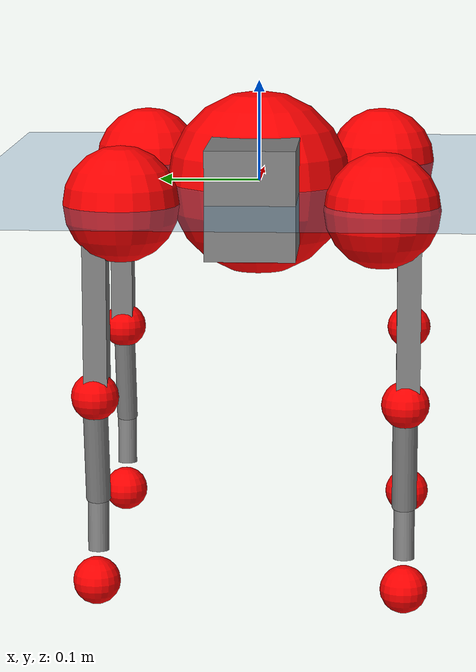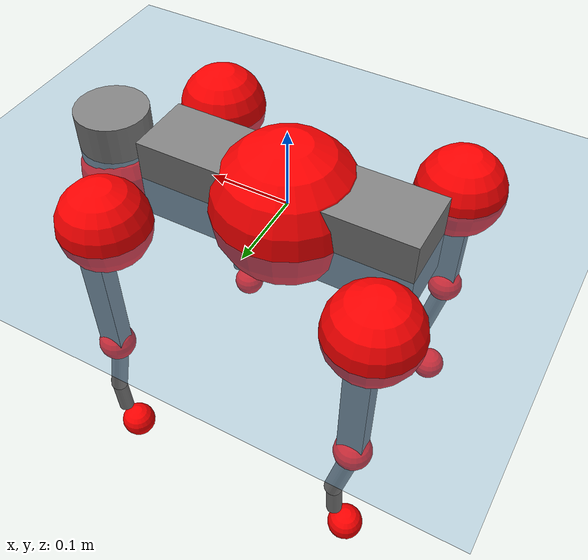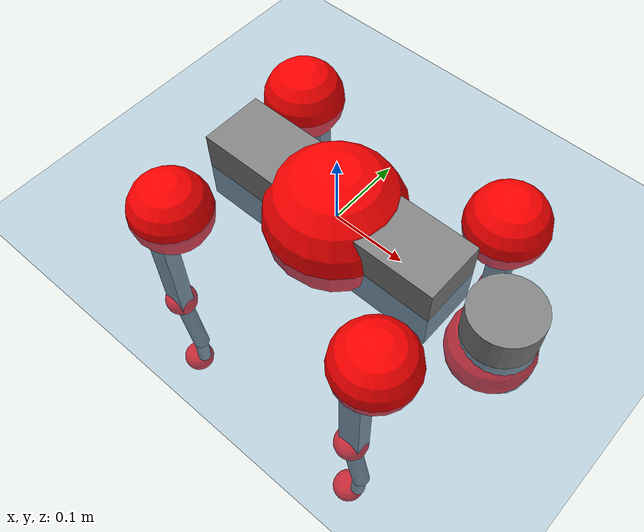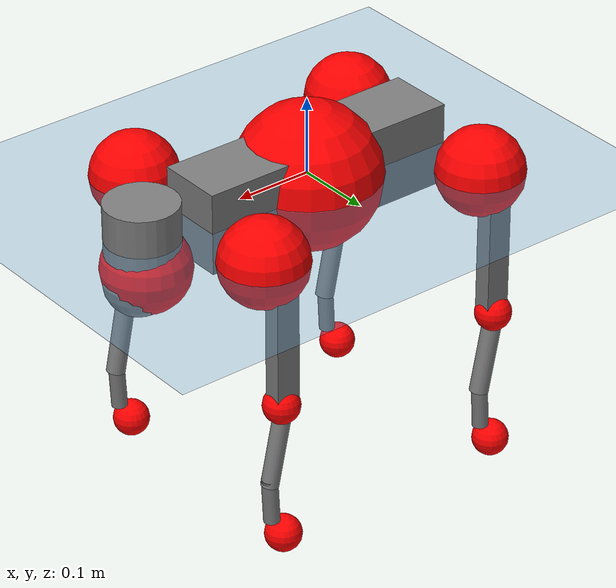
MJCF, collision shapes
<mujoco model="go2">
  <compiler angle="radian" assetdir="assets" balanceinertia="true" inertiafromgeom="false"/>

  <option timestep="0.005" density="1.2" viscosity="2e-05"/>

  <size nkey="1"/>

  <visual>
    <quality shadowsize="8192"/>
    <map shadowclip="0.5"/>
  </visual>

  <default>
    <default class="/">
      <geom contype="0" conaffinity="0" group="1" solref="-1000 -80"/>
      <site size="0.01 0.005 0.005" group="5"/>
      <general forcelimited="true" biastype="affine" gainprm="20" biasprm="0 -20 -0.5"/>
      <default class="go2">
        <joint armature="0.01" damping="0.01" frictionloss="0.2"/>
        <geom condim="1" margin="0.001"/>
        <default class="visual">
          <geom type="mesh" group="2"/>
        </default>
        <default class="collision">
          <geom group="3"/>
          <default class="foot">
            <geom size="0.022 0 0" condim="6" priority="1" friction="0.8 0.02 0.01" solimp="0.015 1 0.022"/>
          </default>
        </default>
        <default class="reward_collision_sphere">
          <geom group="5" rgba="1 0 0 1"/>
        </default>
      </default>
    </default>
  </default>

  <asset>
    <texture type="skybox" colorspace="auto" name="//unnamed_texture_0" builtin="gradient" rgb1="0.95 0.95 0.95" rgb2="0.95 0.95 0.95" width="100" height="600"/>
    <texture type="2d" colorspace="auto" name="texplane" builtin="checker" rgb1="0.345 0.575 0.748" rgb2="0.345 0.575 0.748" markrgb="1 1 1" width="512" height="512"/>
    <material name="MatPlane" class="/" texture="texplane" texuniform="true" texrepeat="2 2" specular="0.9"/>
    <material name="metal" class="/" rgba="0.9 0.95 0.95 1"/>
    <material name="black" class="/" rgba="0 0 0 1"/>
    <material name="white" class="/"/>
    <material name="gray" class="/" rgba="0.671705 0.692426 0.77427 1"/>
    <mesh name="base_0" class="/" file="base_0.obj"/>
    <mesh name="base_1" class="/" file="base_1.obj"/>
    <mesh name="base_2" class="/" file="base_2.obj"/>
    <mesh name="base_3" class="/" file="base_3.obj"/>
    <mesh name="base_4" class="/" file="base_4.obj"/>
    <mesh name="hip_0" class="/" file="hip_0.obj"/>
    <mesh name="hip_1" class="/" file="hip_1.obj"/>
    <mesh name="thigh_0" class="/" file="thigh_0.obj"/>
    <mesh name="thigh_1" class="/" file="thigh_1.obj"/>
    <mesh name="thigh_mirror_0" class="/" file="thigh_mirror_0.obj"/>
    <mesh name="thigh_mirror_1" class="/" file="thigh_mirror_1.obj"/>
    <mesh name="calf_0" class="/" file="calf_0.obj"/>
    <mesh name="calf_1" class="/" file="calf_1.obj"/>
    <mesh name="calf_mirror_0" class="/" file="calf_mirror_0.obj"/>
    <mesh name="calf_mirror_1" class="/" file="calf_mirror_1.obj"/>
    <mesh name="foot" class="/" file="foot.obj"/>
  </asset>

  <worldbody>
    <geom name="floor" class="/" size="100 100 0.125" type="plane" group="0" material="MatPlane"/>
    <light name="toplight_shadow" class="/" pos="0 0 5" dir="0.0990148 0.0990148 -0.990148" type="directional" ambient="0.04 0.04 0.04" diffuse="0.55 0.55 0.55" specular="0.12 0.12 0.12"/>
    <light name="toplight_fill" class="/" pos="0 0 5" dir="0.0990148 0.0990148 -0.990148" type="directional" castshadow="false" ambient="0.04 0.04 0.04" diffuse="0.3 0.3 0.3" specular="0.08 0.08 0.08"/>
    <body name="trunk" childclass="go2" pos="-0.00106972 0.00034157 -0.00213053" quat="0.999999 0.000230034 0.0012097 -3.98238e-05">
      <inertial pos="0.0163252 0.00261464 -0.00480188" quat="0.000456117 0.704867 -0.00570848 0.709316" mass="5.3932" diaginertia="0.0489786 0.140122 0.0114821"/>
      <joint name="//unnamed_joint_0" type="free" armature="0" damping="0" frictionloss="0"/>
      <geom name="//unnamed_geom_1" class="visual" material="black" mesh="base_0"/>
      <geom name="//unnamed_geom_2" class="visual" material="black" mesh="base_1"/>
      <geom name="//unnamed_geom_3" class="visual" material="black" mesh="base_2"/>
      <geom name="//unnamed_geom_4" class="visual" material="white" mesh="base_3"/>
      <geom name="//unnamed_geom_5" class="visual" material="gray" mesh="base_4"/>
      <geom name="trunk_1" class="collision" size="0.173816 0.0432 0.0526716" type="box"/>
      <geom name="trunk_2" class="collision" size="0.0462032 0.0415829" pos="0.241984 0 0.00856027" type="cylinder"/>
      <geom name="trunk_3" class="collision" size="0.043431" pos="0.248777 0 -0.0513616"/>
      <geom name="//unnamed_geom_9" class="reward_collision_sphere" size="0.0924064"/>
      <geom name="//unnamed_geom_10" class="reward_collision_sphere" size="0.0554438" pos="0.237739 0 -0.0385212"/>
      <site name="imu" pos="-0.0257301 0.0118986 0.0221316" size="0.00924064"/>
      <camera name="track" pos="0 -2.13419 0" quat="0.707107 0.707107 0 0" mode="trackcom"/>
      <camera name="ego_camera" pos="0.264909 0 0.0385212" quat="-0.5 -0.5 0.5 0.5"/>
      <body name="FL_hip" pos="0.164097 0.052254 0.00145288" quat="1 -0.000292942 -8.12397e-05 7.9743e-05">
        <inertial pos="-0.00718796 0.00260246 -0.00165309" quat="0.497772 0.493023 0.502248 0.506851" mass="0.520581" diaginertia="0.000392023 0.000799535 0.000214115"/>
        <joint name="FL_hip_joint" pos="0 0 0" axis="0.999987 -0.00301599 0.00417949" range="-1.05251 1.09265" armature="0.00918512" damping="0" frictionloss="0.204416"/>
        <geom name="//unnamed_geom_11" class="visual" material="metal" mesh="hip_0"/>
        <geom name="//unnamed_geom_12" class="visual" material="gray" mesh="hip_1"/>
        <geom name="//unnamed_geom_13" class="collision" size="0.0425069 0.0184813" pos="0 0.0853677 0" quat="0.707107 0.707107 0 0" type="cylinder"/>
        <geom name="//unnamed_geom_14" class="reward_collision_sphere" size="0.0554438" pos="0 0.0746968 0"/>
        <body name="FL_thigh" pos="-0.00353198 0.103625 0.00158643" quat="1 -0.000148678 -0.000274029 0.000180704">
          <inertial pos="-0.00194757 -0.023511 -0.0277263" quat="0.830208 0.082965 -0.0196378 0.550895" mass="0.873197" diaginertia="0.00251458 0.00781972 0.000376548"/>
          <joint name="FL_thigh_joint" pos="0 0 0" axis="0.0015247 0.999991 0.00391261" stiffness="0.0083047" range="-1.61263 3.48493" armature="0.00809059" damping="0.0190527" frictionloss="0.184232"/>
          <geom name="//unnamed_geom_15" class="visual" material="metal" mesh="thigh_0"/>
          <geom name="//unnamed_geom_16" class="visual" material="gray" mesh="thigh_1"/>
          <geom name="//unnamed_geom_17" class="collision" size="0.0984128 0.0113198 0.0157091" pos="0 0 -0.0911668" quat="0.707107 0 0.707107 0" type="box"/>
          <body name="FL_calf" pos="0.000952006 -0.00114392 -0.183242" quat="1 -0.000116039 -7.01052e-05 -6.1421e-05">
            <inertial pos="0.00372855 -0.00302907 -0.12148" quat="0.711087 0.000697505 -0.0053109 0.703084" mass="0.191657" diaginertia="0.000636696 0.0020004 2.43039e-05"/>
            <joint name="FL_calf_joint" pos="0 0 0" axis="-0.00442481 0.999838 -0.0174297" range="-2.75716 -0.787218" armature="0.00930597" damping="0" frictionloss="0.203168"/>
            <geom name="//unnamed_geom_18" class="visual" material="gray" mesh="calf_0"/>
            <geom name="//unnamed_geom_19" class="visual" material="black" mesh="calf_1"/>
            <geom name="FL_calf0" class="collision" size="0.0110888 0.0554438" pos="0.00679254 0 -0.0513616" quat="0.994493 0 -0.104807 0" type="cylinder"/>
            <geom name="//unnamed_geom_21" class="collision" size="0.0101647 0.0300321" pos="0.0169814 0 -0.126692" quat="0.999688 0 0.0249974 0" type="cylinder"/>
            <geom name="//unnamed_geom_22" class="visual" pos="0 0 -0.182334" quat="1 0 0 0" material="black" mesh="foot"/>
            <geom name="FL_foot" class="foot" size="0.0152603" pos="-0.00169814 0 -0.182334"/>
            <geom name="//unnamed_geom_24" class="reward_collision_sphere" size="0.0231016"/>
            <geom name="//unnamed_geom_25" class="reward_collision_sphere" size="0.0231016" pos="-0.00169814 0 -0.182334"/>
            <site name="FL_foot" class="foot" pos="-0.00169814 0 -0.182334" size="0.00924064"/>
          </body>
        </body>
      </body>
      <body name="FR_hip" pos="0.163675 -0.0483225 0.00266733" quat="0.999999 0.00100281 -6.7304e-05 -0.00028271">
        <inertial pos="-0.00510866 -0.00186073 0.000137282" quat="0.506881 0.503182 0.494614 0.495214" mass="0.546274" diaginertia="0.000384022 0.000817119 0.000216749"/>
        <joint name="FR_hip_joint" pos="0 0 0" axis="0.999934 -0.00175482 -0.0113765" range="-1.09469 1.00586" armature="0.0091523" damping="0" frictionloss="0.20908"/>
        <geom name="//unnamed_geom_26" class="visual" pos="0 1.83875e-09 7.8868e-08" quat="4.63268e-05 1 0 0" material="metal" mesh="hip_0"/>
        <geom name="//unnamed_geom_27" class="visual" pos="0 2.98084e-09 -1.95071e-07" quat="4.63268e-05 1 0 0" material="gray" mesh="hip_1"/>
        <geom name="//unnamed_geom_28" class="collision" size="0.0425069 0.0184813" pos="0 -0.0853677 0" quat="0.707107 0.707107 0 0" type="cylinder"/>
        <geom name="//unnamed_geom_29" class="reward_collision_sphere" size="0.0554438" pos="0 -0.0746968 0"/>
        <body name="FR_thigh" pos="-0.000577042 -0.104496 -0.000375559" quat="1 0.000192956 -0.000278599 0.000809052">
          <inertial pos="-0.00402369 0.024233 -0.0287774" quat="0.551797 -0.0201869 0.0848784 0.829402" mass="0.944019" diaginertia="0.0026321 0.00782371 0.000412926"/>
          <joint name="FR_thigh_joint" pos="0 0 0" axis="0.00234371 -0.999981 -0.00565131" stiffness="0.0128264" range="-3.49573 1.52222" armature="0.00847422" damping="0.00817987" frictionloss="0.158898"/>
          <geom name="//unnamed_geom_30" class="visual" material="metal" mesh="thigh_mirror_0"/>
          <geom name="//unnamed_geom_31" class="visual" material="gray" mesh="thigh_mirror_1"/>
          <geom name="//unnamed_geom_32" class="collision" size="0.0984128 0.0113198 0.0157091" pos="0 0 -0.0911668" quat="0.707107 0 0.707107 0" type="box"/>
          <body name="FR_calf" pos="-0.00305502 -0.00185056 -0.180171" quat="1 -0.00011539 -6.35332e-06 -0.000285117">
            <inertial pos="0.00581867 -0.00178397 -0.118593" quat="0.704475 -0.00684721 0.0103341 0.70962" mass="0.18674" diaginertia="0.000641166 0.00202708 2.28955e-05"/>
            <joint name="FR_calf_joint" pos="0 0 0" axis="-0.000248125 -1 -0.000697025" range="0.830893 2.73755" armature="0.00893102" damping="0" frictionloss="0.167368"/>
            <geom name="//unnamed_geom_33" class="visual" material="gray" mesh="calf_mirror_0"/>
            <geom name="//unnamed_geom_34" class="visual" material="black" mesh="calf_mirror_1"/>
            <geom name="FR_calf0" class="collision" size="0.0120128 0.0554438" pos="0.00849068 0 -0.0513616" quat="0.995004 0 -0.0998334 0" type="cylinder"/>
            <geom name="//unnamed_geom_36" class="collision" size="0.0101647 0.0300321" pos="0.0169814 0 -0.126692" quat="0.999688 0 0.0249974 0" type="cylinder"/>
            <geom name="//unnamed_geom_37" class="visual" pos="0 0 -0.182334" quat="1 0 0 0" material="black" mesh="foot"/>
            <geom name="FR_foot" class="foot" size="0.0205068" pos="-0.00169814 0 -0.182334"/>
            <geom name="//unnamed_geom_39" class="reward_collision_sphere" size="0.0231016"/>
            <geom name="//unnamed_geom_40" class="reward_collision_sphere" size="0.0231016" pos="-0.00169814 0 -0.182334"/>
            <site name="FR_foot" class="foot" pos="-0.00169814 0 -0.182334" size="0.00924064"/>
          </body>
        </body>
      </body>
      <body name="RL_hip" pos="-0.164491 0.0472861 0.000718867" quat="1 0.000529082 -0.00068366 -0.000234227">
        <inertial pos="0.0042273 -0.000277038 -0.00201991" quat="0.506677 0.493393 0.49958 0.500262" mass="0.525863" diaginertia="0.000369883 0.000812447 0.000206573"/>
        <joint name="RL_hip_joint" pos="0 0 0" axis="-0.999989 0.00352444 0.00323708" range="-1.10278 1.09583" armature="0.010483" damping="0.016516" frictionloss="0.186061"/>
        <geom name="//unnamed_geom_41" class="visual" pos="6.06224e-11 0 1.18834e-08" quat="4.63268e-05 0 1 0" material="metal" mesh="hip_0"/>
        <geom name="//unnamed_geom_42" class="visual" pos="9.82762e-11 0 1.05389e-08" quat="4.63268e-05 0 1 0" material="gray" mesh="hip_1"/>
        <geom name="//unnamed_geom_43" class="collision" size="0.0425069 0.0184813" pos="0 0.0853677 0" quat="0.707107 0.707107 0 0" type="cylinder"/>
        <geom name="//unnamed_geom_44" class="reward_collision_sphere" size="0.0554438" pos="0 0.0746968 0"/>
        <body name="RL_thigh" pos="-0.00151486 0.0994939 -0.000671537" quat="0.999999 -0.000798258 -0.000264492 0.00114896">
          <inertial pos="-0.00131739 -0.0263552 -0.0300147" quat="0.829278 0.0848548 -0.0197652 0.552002" mass="0.93068" diaginertia="0.00276029 0.00813599 0.000426052"/>
          <joint name="RL_thigh_joint" pos="0 0 0" axis="0.00782871 0.99991 0.0109096" stiffness="0.0133466" range="-0.575141 4.53466" armature="0.00933039" damping="0.00766936" frictionloss="0.200123"/>
          <geom name="//unnamed_geom_45" class="visual" material="metal" mesh="thigh_0"/>
          <geom name="//unnamed_geom_46" class="visual" material="gray" mesh="thigh_1"/>
          <geom name="//unnamed_geom_47" class="collision" size="0.0984128 0.0113198 0.0157091" pos="0 0 -0.0911668" quat="0.707107 0 0.707107 0" type="box"/>
          <body name="RL_calf" pos="-0.00158739 0.00185588 -0.185445" quat="0.999999 0.000707964 -0.000829489 0.000772073">
            <inertial pos="0.00309432 0.00225425 -0.122779" quat="0.719208 -0.00198998 -0.00222543 0.694788" mass="0.183106" diaginertia="0.000632232 0.00190548 2.40046e-05"/>
            <joint name="RL_calf_joint" pos="0 0 0" axis="-0.000110408 0.999959 0.00907875" stiffness="0.00326721" range="-2.74187 -0.869056" armature="0.0104536" damping="0" frictionloss="0.186883"/>
            <geom name="//unnamed_geom_48" class="visual" material="gray" mesh="calf_0"/>
            <geom name="//unnamed_geom_49" class="visual" material="black" mesh="calf_1"/>
            <geom name="RL_calf0" class="collision" size="0.0120128 0.0554438" pos="0.00849068 0 -0.0513616" quat="0.995004 0 -0.0998334 0" type="cylinder"/>
            <geom name="//unnamed_geom_51" class="collision" size="0.0101647 0.0300321" pos="0.0169814 0 -0.126692" quat="0.999688 0 0.0249974 0" type="cylinder"/>
            <geom name="//unnamed_geom_52" class="visual" pos="0 0 -0.182334" quat="1 0 0 0" material="black" mesh="foot"/>
            <geom name="RL_foot" class="foot" size="0.0200138" pos="-0.00169814 0 -0.182334"/>
            <geom name="//unnamed_geom_54" class="reward_collision_sphere" size="0.0231016"/>
            <geom name="//unnamed_geom_55" class="reward_collision_sphere" size="0.0231016" pos="-0.00169814 0 -0.182334"/>
            <site name="RL_foot" class="foot" pos="-0.00169814 0 -0.182334" size="0.00924064"/>
          </body>
        </body>
      </body>
      <body name="RR_hip" pos="-0.16207 -0.0498086 -0.00409829" quat="1 -0.000365753 -0.000377461 1.44857e-06">
        <inertial pos="0.00164314 -0.00439649 -0.000921596" quat="0.501179 0.498352 0.505245 0.495169" mass="0.538167" diaginertia="0.000412363 0.000850309 0.000232495"/>
        <joint name="RR_hip_joint" pos="0 0 0" axis="-0.999958 -0.00726441 0.00561917" range="-1.07979 1.04955" armature="0.00918454" damping="0.00618712" frictionloss="0.201284"/>
        <geom name="//unnamed_geom_56" class="visual" pos="-5.30742e-11 1.83875e-09 -6.69846e-08" quat="2.14617e-09 4.63268e-05 4.63268e-05 -1" material="metal" mesh="hip_0"/>
        <geom name="//unnamed_geom_57" class="visual" pos="-1.16946e-10 2.98084e-09 2.0561e-07" quat="2.14617e-09 4.63268e-05 4.63268e-05 -1" material="gray" mesh="hip_1"/>
        <geom name="//unnamed_geom_58" class="collision" size="0.0425069 0.0184813" pos="0 -0.0853677 0" quat="0.707107 0.707107 0 0" type="cylinder"/>
        <geom name="//unnamed_geom_59" class="reward_collision_sphere" size="0.0554438" pos="0 -0.0746968 0"/>
        <body name="RR_thigh" pos="0.00108246 -0.10065 -0.00223385" quat="1 0.000158532 -0.000442499 -8.07994e-06">
          <inertial pos="-0.00099925 0.0221972 -0.0289236" quat="0.562439 -0.0224402 0.0843102 0.822223" mass="0.883543" diaginertia="0.00270321 0.00799229 0.000400031"/>
          <joint name="RR_thigh_joint" pos="0 0 0" axis="-0.0147956 -0.999851 -0.00887951" range="-4.53618 0.467296" armature="0.00930294" damping="0" frictionloss="0.185853"/>
          <geom name="//unnamed_geom_60" class="visual" material="metal" mesh="thigh_mirror_0"/>
          <geom name="//unnamed_geom_61" class="visual" material="gray" mesh="thigh_mirror_1"/>
          <geom name="//unnamed_geom_62" class="collision" size="0.0984128 0.0113198 0.0157091" pos="0 0 -0.0911668" quat="0.707107 0 0.707107 0" type="box"/>
          <body name="RR_calf" pos="-0.00278886 0.00229081 -0.184484" quat="1 -0.000592924 0.000418667 0.000386055">
            <inertial pos="0.00548143 0.00116449 -0.121796" quat="0.700679 0.00171378 0.0119059 0.713375" mass="0.198234" diaginertia="0.000686231 0.00214261 2.44118e-05"/>
            <joint name="RR_calf_joint" pos="0 0 0" axis="-0.00316215 -0.999933 -0.0111235" range="0.889181 2.73243" armature="0.00944453" damping="0.00351377" frictionloss="0.184539"/>
            <geom name="//unnamed_geom_63" class="visual" material="gray" mesh="calf_mirror_0"/>
            <geom name="//unnamed_geom_64" class="visual" material="black" mesh="calf_mirror_1"/>
            <geom name="RR_calf0" class="collision" size="0.0120128 0.0554438" pos="0.00849068 0 -0.0513616" quat="0.995004 0 -0.0998334 0" type="cylinder"/>
            <geom name="//unnamed_geom_66" class="collision" size="0.0101647 0.0300321" pos="0.0169814 0 -0.126692" quat="0.999688 0 0.0249974 0" type="cylinder"/>
            <geom name="//unnamed_geom_67" class="visual" pos="0 0 -0.182334" quat="1 0 0 0" material="black" mesh="foot"/>
            <geom name="RR_foot" class="foot" size="0.022733" pos="-0.00169814 0 -0.182334"/>
            <geom name="//unnamed_geom_69" class="reward_collision_sphere" size="0.0231016"/>
            <geom name="//unnamed_geom_70" class="reward_collision_sphere" size="0.0231016" pos="-0.00169814 0 -0.182334"/>
            <site name="RR_foot" class="foot" pos="-0.00169814 0 -0.182334" size="0.00924064"/>
          </body>
        </body>
      </body>
    </body>
  </worldbody>

  <contact>
    <pair class="/" geom1="floor" geom2="FL_foot" name="//unnamed_contact_0"/>
    <pair class="/" geom1="floor" geom2="FR_foot" name="//unnamed_contact_1"/>
    <pair class="/" geom1="floor" geom2="RL_foot" name="//unnamed_contact_2"/>
    <pair class="/" geom1="floor" geom2="RR_foot" name="//unnamed_contact_3"/>
  </contact>

  <actuator>
    <general name="FL_hip" class="/" joint="FL_hip_joint" forcerange="-21.6631 21.6631" gainprm="18.2645" biasprm="0 -18.2645 -0.459699"/>
    <general name="FL_thigh" class="/" joint="FL_thigh_joint" forcerange="-21.3096 21.3096" gainprm="18.2645" biasprm="0 -18.2645 -0.459699"/>
    <general name="FL_calf" class="/" joint="FL_calf_joint" forcerange="-45.5974 45.5974" gainprm="18.2645" biasprm="0 -18.2645 -0.459699"/>
    <general name="FR_hip" class="/" joint="FR_hip_joint" forcerange="-22.6555 22.6555" gainprm="18.2645" biasprm="0 -18.2645 -0.459699"/>
    <general name="FR_thigh" class="/" joint="FR_thigh_joint" forcerange="-23.6906 23.6906" gainprm="18.2645" biasprm="0 -18.2645 -0.459699"/>
    <general name="FR_calf" class="/" joint="FR_calf_joint" forcerange="-40.6266 40.6266" gainprm="18.2645" biasprm="0 -18.2645 -0.459699"/>
    <general name="RL_hip" class="/" joint="RL_hip_joint" forcerange="-21.5671 21.5671" gainprm="18.2645" biasprm="0 -18.2645 -0.459699"/>
    <general name="RL_thigh" class="/" joint="RL_thigh_joint" forcerange="-20.1278 20.1278" gainprm="18.2645" biasprm="0 -18.2645 -0.459699"/>
    <general name="RL_calf" class="/" joint="RL_calf_joint" forcerange="-46.2223 46.2223" gainprm="18.2645" biasprm="0 -18.2645 -0.459699"/>
    <general name="RR_hip" class="/" joint="RR_hip_joint" forcerange="-22.0835 22.0835" gainprm="18.2645" biasprm="0 -18.2645 -0.459699"/>
    <general name="RR_thigh" class="/" joint="RR_thigh_joint" forcerange="-21.2327 21.2327" gainprm="18.2645" biasprm="0 -18.2645 -0.459699"/>
    <general name="RR_calf" class="/" joint="RR_calf_joint" forcerange="-46.0363 46.0363" gainprm="18.2645" biasprm="0 -18.2645 -0.459699"/>
  </actuator>

  <sensor>
    <gyro site="imu" name="imu_angular_velocity"/>
    <velocimeter site="imu" name="imu_linear_velocity"/>
    <framelinvel objtype="site" objname="FL_foot" name="FL_foot_global_linear_velocity"/>
    <framelinvel objtype="site" objname="FR_foot" name="FR_foot_global_linear_velocity"/>
    <framelinvel objtype="site" objname="RL_foot" name="RL_foot_global_linear_velocity"/>
    <framelinvel objtype="site" objname="RR_foot" name="RR_foot_global_linear_velocity"/>
  </sensor>

  <keyframe>
    <key name="home" qpos="0 0 0.325 1 0 0 0 0.1 0.8 -1.5 -0.1 -0.8 1.5 -0.1 0.8 -1.5 0.1 -0.8 1.5"/>
  </keyframe>
</mujoco>
